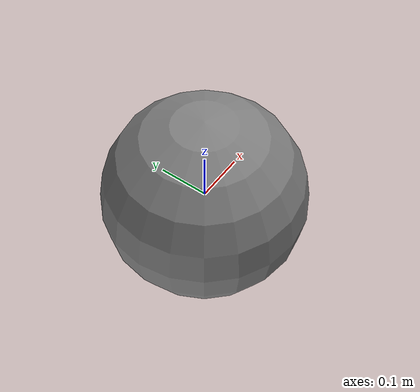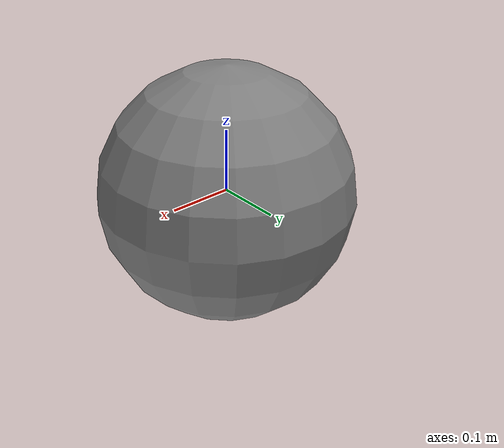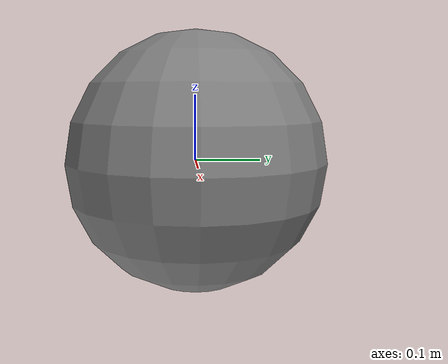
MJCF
<mujoco>
                <compiler angle="radian" discardvisual="true"/>
                <worldbody>
                    <body name="b" pos="0 0 0">
                        <joint name="j1" type="hinge" axis="0 0 1"/>
                        <geom name="collision_geom" type="sphere" size="0.1" mass="1"/>
                        <geom name="visual_ref" type="sphere" size="0.2" contype="0" conaffinity="0"/>
                    </body>
                </worldbody>
                <sensor>
                    <framepos name="vis_sensor" objname="visual_ref"/>
                </sensor>
            </mujoco>
